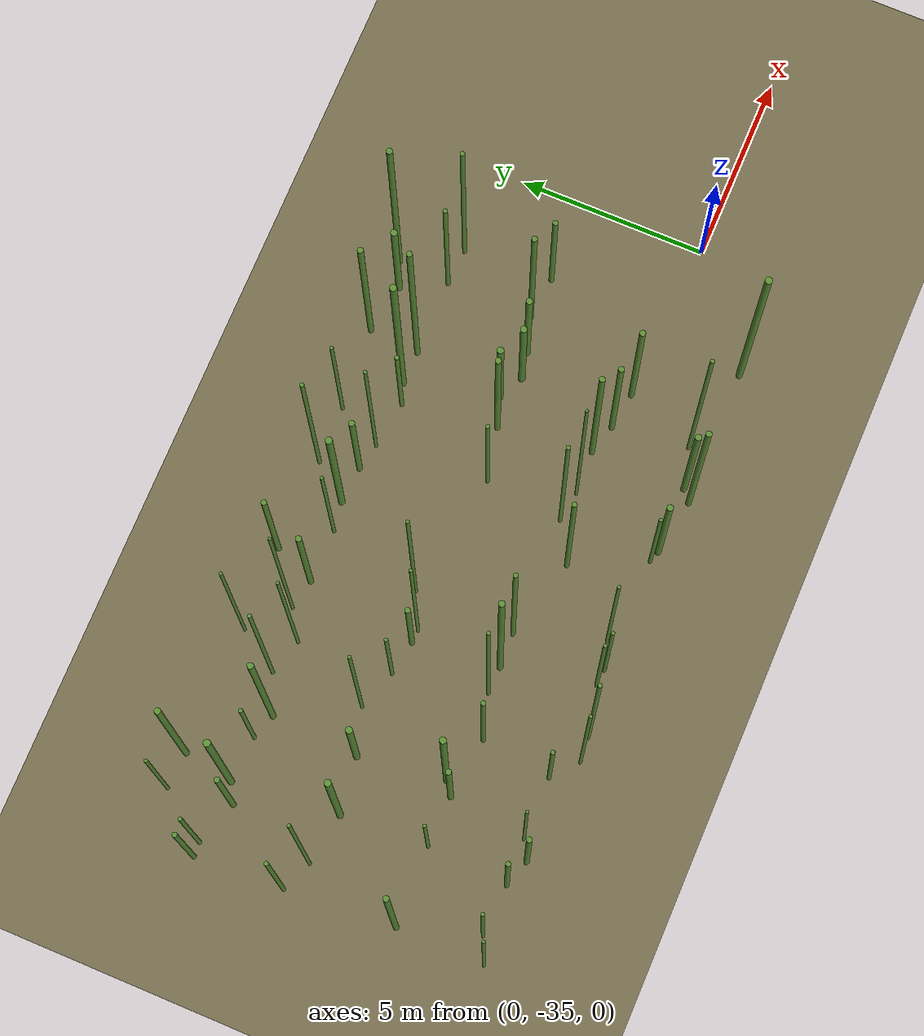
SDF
<sdf version="1.9">
 <world name="bamboo_field">
  <model name="ground_plane">
   <static>true</static>
   <link name="link">
    <collision name="collision">
     <geometry><plane><normal>0 0 1</normal><size>80.0 80.0</size></plane></geometry>
    </collision>
    <visual name="visual">
     <geometry><plane><normal>0 0 1</normal><size>80.0 80.0</size></plane></geometry>
     <material><diffuse>0.45 0.42 0.30 1</diffuse></material>
    </visual>
   </link>
  </model>
  <model name="bamboo_15">
   <static>true</static>
   <pose>-19.13553434772024 -36.862579329947536 3.441443638720389 0 0 0</pose>
   <link name="link">
    <collision name="collision">
     <geometry>
      <cylinder><radius>0.04057405109714098</radius><length>6.882887277440778</length></cylinder>
     </geometry>
    </collision>
    <visual name="visual">
     <geometry>
      <cylinder><radius>0.04057405109714098</radius><length>6.882887277440778</length></cylinder>
     </geometry>
     <material><diffuse>0.35 0.55 0.20 1</diffuse><specular>0.1 0.1 0.1 1</specular></material>
    </visual>
   </link>
  </model>
  <model name="bamboo_16">
   <static>true</static>
   <pose>-18.48839493562738 -36.57078741196894 2.86953050133821 0 0 0</pose>
   <link name="link">
    <collision name="collision">
     <geometry>
      <cylinder><radius>0.045577608679793824</radius><length>5.73906100267642</length></cylinder>
     </geometry>
    </collision>
    <visual name="visual">
     <geometry>
      <cylinder><radius>0.045577608679793824</radius><length>5.73906100267642</length></cylinder>
     </geometry>
     <material><diffuse>0.35 0.55 0.20 1</diffuse><specular>0.1 0.1 0.1 1</specular></material>
    </visual>
   </link>
  </model>
  <model name="bamboo_17">
   <static>true</static>
   <pose>-17.116820866365174 -36.629095562347956 2.3573037610602627 0 0 0</pose>
   <link name="link">
    <collision name="collision">
     <geometry>
      <cylinder><radius>0.06502930565251491</radius><length>4.7146075221205255</length></cylinder>
     </geometry>
    </collision>
    <visual name="visual">
     <geometry>
      <cylinder><radius>0.06502930565251491</radius><length>4.7146075221205255</length></cylinder>
     </geometry>
     <material><diffuse>0.35 0.55 0.20 1</diffuse><specular>0.1 0.1 0.1 1</specular></material>
    </visual>
   </link>
  </model>
  <model name="bamboo_18">
   <static>true</static>
   <pose>-16.40252487727449 -36.860893240149956 2.3056785370992694 0 0 0</pose>
   <link name="link">
    <collision name="collision">
     <geometry>
      <cylinder><radius>0.07044851057190861</radius><length>4.611357074198539</length></cylinder>
     </geometry>
    </collision>
    <visual name="visual">
     <geometry>
      <cylinder><radius>0.07044851057190861</radius><length>4.611357074198539</length></cylinder>
     </geometry>
     <material><diffuse>0.35 0.55 0.20 1</diffuse><specular>0.1 0.1 0.1 1</specular></material>
    </visual>
   </link>
  </model>
  <model name="bamboo_19">
   <static>true</static>
   <pose>-15.91119812620479 -36.58808952984846 2.648312114009346 0 0 0</pose>
   <link name="link">
    <collision name="collision">
     <geometry>
      <cylinder><radius>0.04002859480639718</radius><length>5.296624228018692</length></cylinder>
     </geometry>
    </collision>
    <visual name="visual">
     <geometry>
      <cylinder><radius>0.04002859480639718</radius><length>5.296624228018692</length></cylinder>
     </geometry>
     <material><diffuse>0.35 0.55 0.20 1</diffuse><specular>0.1 0.1 0.1 1</specular></material>
    </visual>
   </link>
  </model>
  <model name="bamboo_20">
   <static>true</static>
   <pose>-14.258736375302771 -36.57559394952509 2.115850332988375 0 0 0</pose>
   <link name="link">
    <collision name="collision">
     <geometry>
      <cylinder><radius>0.05537570627013307</radius><length>4.23170066597675</length></cylinder>
     </geometry>
    </collision>
    <visual name="visual">
     <geometry>
      <cylinder><radius>0.05537570627013307</radius><length>4.23170066597675</length></cylinder>
     </geometry>
     <material><diffuse>0.35 0.55 0.20 1</diffuse><specular>0.1 0.1 0.1 1</specular></material>
    </visual>
   </link>
  </model>
  <model name="bamboo_21">
   <static>true</static>
   <pose>-13.602997613403556 -37.14858453608386 3.521204330514463 0 0 0</pose>
   <link name="link">
    <collision name="collision">
     <geometry>
      <cylinder><radius>0.043460625923419184</radius><length>7.042408661028926</length></cylinder>
     </geometry>
    </collision>
    <visual name="visual">
     <geometry>
      <cylinder><radius>0.043460625923419184</radius><length>7.042408661028926</length></cylinder>
     </geometry>
     <material><diffuse>0.35 0.55 0.20 1</diffuse><specular>0.1 0.1 0.1 1</specular></material>
    </visual>
   </link>
  </model>
  <model name="bamboo_22">
   <static>true</static>
   <pose>-12.952772204538334 -37.090199817424235 3.744866082170515 0 0 0</pose>
   <link name="link">
    <collision name="collision">
     <geometry>
      <cylinder><radius>0.053252831447002956</radius><length>7.48973216434103</length></cylinder>
     </geometry>
    </collision>
    <visual name="visual">
     <geometry>
      <cylinder><radius>0.053252831447002956</radius><length>7.48973216434103</length></cylinder>
     </geometry>
     <material><diffuse>0.35 0.55 0.20 1</diffuse><specular>0.1 0.1 0.1 1</specular></material>
    </visual>
   </link>
  </model>
  <model name="bamboo_23">
   <static>true</static>
   <pose>-11.636645777504546 -36.783543920886075 2.62343258260179 0 0 0</pose>
   <link name="link">
    <collision name="collision">
     <geometry>
      <cylinder><radius>0.05005755316948479</radius><length>5.24686516520358</length></cylinder>
     </geometry>
    </collision>
    <visual name="visual">
     <geometry>
      <cylinder><radius>0.05005755316948479</radius><length>5.24686516520358</length></cylinder>
     </geometry>
     <material><diffuse>0.35 0.55 0.20 1</diffuse><specular>0.1 0.1 0.1 1</specular></material>
    </visual>
   </link>
  </model>
  <model name="bamboo_24">
   <static>true</static>
   <pose>-11.221350400098151 -36.82664245831363 2.4493946740631145 0 0 0</pose>
   <link name="link">
    <collision name="collision">
     <geometry>
      <cylinder><radius>0.04605020979341329</radius><length>4.898789348126229</length></cylinder>
     </geometry>
    </collision>
    <visual name="visual">
     <geometry>
      <cylinder><radius>0.04605020979341329</radius><length>4.898789348126229</length></cylinder>
     </geometry>
     <material><diffuse>0.35 0.55 0.20 1</diffuse><specular>0.1 0.1 0.1 1</specular></material>
    </visual>
   </link>
  </model>
  <model name="bamboo_25">
   <static>true</static>
   <pose>-10.50570515189493 -36.6046645521294 3.262205914540198 0 0 0</pose>
   <link name="link">
    <collision name="collision">
     <geometry>
      <cylinder><radius>0.04354965430045163</radius><length>6.524411829080396</length></cylinder>
     </geometry>
    </collision>
    <visual name="visual">
     <geometry>
      <cylinder><radius>0.04354965430045163</radius><length>6.524411829080396</length></cylinder>
     </geometry>
     <material><diffuse>0.35 0.55 0.20 1</diffuse><specular>0.1 0.1 0.1 1</specular></material>
    </visual>
   </link>
  </model>
  <model name="bamboo_26">
   <static>true</static>
   <pose>-8.172048418307172 -36.83872839590599 2.26462369745005 0 0 0</pose>
   <link name="link">
    <collision name="collision">
     <geometry><cylinder><radius>0.05071184036852193</radius><length>4.5292473949001</length></cylinder></geometry>
    </collision>
    <visual name="visual">
     <geometry><cylinder><radius>0.05071184036852193</radius><length>4.5292473949001</length></cylinder></geometry>
     <material><diffuse>0.35 0.55 0.20 1</diffuse><specular>0.1 0.1 0.1 1</specular></material>
    </visual>
   </link>
  </model>
  <model name="bamboo_27">
   <static>true</static>
   <pose>-7.869988406228748 -36.936722733549225 2.380819828723755 0 0 0</pose>
   <link name="link">
    <collision name="collision">
     <geometry>
      <cylinder><radius>0.08037484988833217</radius><length>4.76163965744751</length></cylinder>
     </geometry>
    </collision>
    <visual name="visual">
     <geometry>
      <cylinder><radius>0.08037484988833217</radius><length>4.76163965744751</length></cylinder>
     </geometry>
     <material><diffuse>0.35 0.55 0.20 1</diffuse><specular>0.1 0.1 0.1 1</specular></material>
    </visual>
   </link>
  </model>
  <model name="bamboo_28">
   <static>true</static>
   <pose>-6.37949287902478 -37.16956605142732 3.3467290945866033 0 0 0</pose>
   <link name="link">
    <collision name="collision">
     <geometry>
      <cylinder><radius>0.07645379247299253</radius><length>6.693458189173207</length></cylinder>
     </geometry>
    </collision>
    <visual name="visual">
     <geometry>
      <cylinder><radius>0.07645379247299253</radius><length>6.693458189173207</length></cylinder>
     </geometry>
     <material><diffuse>0.35 0.55 0.20 1</diffuse><specular>0.1 0.1 0.1 1</specular></material>
    </visual>
   </link>
  </model>
  <model name="bamboo_29">
   <static>true</static>
   <pose>-6.0742137782314805 -36.924429077750496 2.4973126678405713 0 0 0</pose>
   <link name="link">
    <collision name="collision">
     <geometry>
      <cylinder><radius>0.08308362681763955</radius><length>4.9946253356811425</length></cylinder>
     </geometry>
    </collision>
    <visual name="visual">
     <geometry>
      <cylinder><radius>0.08308362681763955</radius><length>4.9946253356811425</length></cylinder>
     </geometry>
     <material><diffuse>0.35 0.55 0.20 1</diffuse><specular>0.1 0.1 0.1 1</specular></material>
    </visual>
   </link>
  </model>
  <model name="bamboo_30">
   <static>true</static>
   <pose>-5.0284158366688665 -36.63551418790041 3.8465311985520256 0 0 0</pose>
   <link name="link">
    <collision name="collision">
     <geometry>
      <cylinder><radius>0.052490322394105025</radius><length>7.693062397104051</length></cylinder>
     </geometry>
    </collision>
    <visual name="visual">
     <geometry>
      <cylinder><radius>0.052490322394105025</radius><length>7.693062397104051</length></cylinder>
     </geometry>
     <material><diffuse>0.35 0.55 0.20 1</diffuse><specular>0.1 0.1 0.1 1</specular></material>
    </visual>
   </link>
  </model>
  <model name="bamboo_31">
   <static>true</static>
   <pose>-2.724677231771242 -37.12204078381095 3.852733966016255 0 0 0</pose>
   <link name="link">
    <collision name="collision">
     <geometry>
      <cylinder><radius>0.08844981286423756</radius><length>7.70546793203251</length></cylinder>
     </geometry>
    </collision>
    <visual name="visual">
     <geometry>
      <cylinder><radius>0.08844981286423756</radius><length>7.70546793203251</length></cylinder>
     </geometry>
     <material><diffuse>0.35 0.55 0.20 1</diffuse><specular>0.1 0.1 0.1 1</specular></material>
    </visual>
   </link>
  </model>
  <model name="bamboo_82">
   <static>true</static>
   <pose>-19.112778545010737 -34.52082828209875 3.5337961967124816 0 0 0</pose>
   <link name="link">
    <collision name="collision">
     <geometry>
      <cylinder><radius>0.07497324856230754</radius><length>7.067592393424963</length></cylinder>
     </geometry>
    </collision>
    <visual name="visual">
     <geometry>
      <cylinder><radius>0.07497324856230754</radius><length>7.067592393424963</length></cylinder>
     </geometry>
     <material><diffuse>0.35 0.55 0.20 1</diffuse><specular>0.1 0.1 0.1 1</specular></material>
    </visual>
   </link>
  </model>
  <model name="bamboo_83">
   <static>true</static>
   <pose>-16.984970143785368 -34.47175842702711 2.051356850994932 0 0 0</pose>
   <link name="link">
    <collision name="collision">
     <geometry>
      <cylinder><radius>0.045404937482880325</radius><length>4.102713701989864</length></cylinder>
     </geometry>
    </collision>
    <visual name="visual">
     <geometry>
      <cylinder><radius>0.045404937482880325</radius><length>4.102713701989864</length></cylinder>
     </geometry>
     <material><diffuse>0.35 0.55 0.20 1</diffuse><specular>0.1 0.1 0.1 1</specular></material>
    </visual>
   </link>
  </model>
  <model name="bamboo_84">
   <static>true</static>
   <pose>-15.636640988426208 -34.50683185090167 2.15199295568612 0 0 0</pose>
   <link name="link">
    <collision name="collision">
     <geometry>
      <cylinder><radius>0.07575073525247342</radius><length>4.30398591137224</length></cylinder>
     </geometry>
    </collision>
    <visual name="visual">
     <geometry>
      <cylinder><radius>0.07575073525247342</radius><length>4.30398591137224</length></cylinder>
     </geometry>
     <material><diffuse>0.35 0.55 0.20 1</diffuse><specular>0.1 0.1 0.1 1</specular></material>
    </visual>
   </link>
  </model>
  <model name="bamboo_85">
   <static>true</static>
   <pose>-15.294572011853782 -34.25721048176213 3.2008232296336883 0 0 0</pose>
   <link name="link">
    <collision name="collision">
     <geometry>
      <cylinder><radius>0.08251466195443981</radius><length>6.4016464592673765</length></cylinder>
     </geometry>
    </collision>
    <visual name="visual">
     <geometry>
      <cylinder><radius>0.08251466195443981</radius><length>6.4016464592673765</length></cylinder>
     </geometry>
     <material><diffuse>0.35 0.55 0.20 1</diffuse><specular>0.1 0.1 0.1 1</specular></material>
    </visual>
   </link>
  </model>
  <model name="bamboo_86">
   <static>true</static>
   <pose>-14.01208386608254 -34.7070397054195 2.7411417524361124 0 0 0</pose>
   <link name="link">
    <collision name="collision">
     <geometry>
      <cylinder><radius>0.06141890066173722</radius><length>5.482283504872225</length></cylinder>
     </geometry>
    </collision>
    <visual name="visual">
     <geometry>
      <cylinder><radius>0.06141890066173722</radius><length>5.482283504872225</length></cylinder>
     </geometry>
     <material><diffuse>0.35 0.55 0.20 1</diffuse><specular>0.1 0.1 0.1 1</specular></material>
    </visual>
   </link>
  </model>
  <model name="bamboo_87">
   <static>true</static>
   <pose>-12.881516593785651 -34.365806410120676 3.9215751344291574 0 0 0</pose>
   <link name="link">
    <collision name="collision">
     <geometry>
      <cylinder><radius>0.04527694353219993</radius><length>7.843150268858315</length></cylinder>
     </geometry>
    </collision>
    <visual name="visual">
     <geometry>
      <cylinder><radius>0.04527694353219993</radius><length>7.843150268858315</length></cylinder>
     </geometry>
     <material><diffuse>0.35 0.55 0.20 1</diffuse><specular>0.1 0.1 0.1 1</specular></material>
    </visual>
   </link>
  </model>
  <model name="bamboo_88">
   <static>true</static>
   <pose>-12.154445033103054 -34.38016207465767 3.9309474624761553 0 0 0</pose>
   <link name="link">
    <collision name="collision">
     <geometry>
      <cylinder><radius>0.07668976520066959</radius><length>7.861894924952311</length></cylinder>
     </geometry>
    </collision>
    <visual name="visual">
     <geometry>
      <cylinder><radius>0.07668976520066959</radius><length>7.861894924952311</length></cylinder>
     </geometry>
     <material><diffuse>0.35 0.55 0.20 1</diffuse><specular>0.1 0.1 0.1 1</specular></material>
    </visual>
   </link>
  </model>
  <model name="bamboo_89">
   <static>true</static>
   <pose>-11.240356671360473 -34.34970231580887 3.4620524286102445 0 0 0</pose>
   <link name="link">
    <collision name="collision">
     <geometry>
      <cylinder><radius>0.06177872465019471</radius><length>6.924104857220489</length></cylinder>
     </geometry>
    </collision>
    <visual name="visual">
     <geometry>
      <cylinder><radius>0.06177872465019471</radius><length>6.924104857220489</length></cylinder>
     </geometry>
     <material><diffuse>0.35 0.55 0.20 1</diffuse><specular>0.1 0.1 0.1 1</specular></material>
    </visual>
   </link>
  </model>
  <model name="bamboo_90">
   <static>true</static>
   <pose>-9.077996153947796 -34.92581152938334 3.220663408461041 0 0 0</pose>
   <link name="link">
    <collision name="collision">
     <geometry>
      <cylinder><radius>0.06323542333016158</radius><length>6.441326816922082</length></cylinder>
     </geometry>
    </collision>
    <visual name="visual">
     <geometry>
      <cylinder><radius>0.06323542333016158</radius><length>6.441326816922082</length></cylinder>
     </geometry>
     <material><diffuse>0.35 0.55 0.20 1</diffuse><specular>0.1 0.1 0.1 1</specular></material>
    </visual>
   </link>
  </model>
  <model name="bamboo_91">
   <static>true</static>
   <pose>-8.0646703420976 -34.32967754199164 3.595664713656193 0 0 0</pose>
   <link name="link">
    <collision name="collision">
     <geometry>
      <cylinder><radius>0.05060599250898695</radius><length>7.191329427312386</length></cylinder>
     </geometry>
    </collision>
    <visual name="visual">
     <geometry>
      <cylinder><radius>0.05060599250898695</radius><length>7.191329427312386</length></cylinder>
     </geometry>
     <material><diffuse>0.35 0.55 0.20 1</diffuse><specular>0.1 0.1 0.1 1</specular></material>
    </visual>
   </link>
  </model>
  <model name="bamboo_92">
   <static>true</static>
   <pose>-7.262504958809101 -34.44184926294946 3.8961251555540626 0 0 0</pose>
   <link name="link">
    <collision name="collision">
     <geometry>
      <cylinder><radius>0.040507555721933854</radius><length>7.792250311108125</length></cylinder>
     </geometry>
    </collision>
    <visual name="visual">
     <geometry>
      <cylinder><radius>0.040507555721933854</radius><length>7.792250311108125</length></cylinder>
     </geometry>
     <material><diffuse>0.35 0.55 0.20 1</diffuse><specular>0.1 0.1 0.1 1</specular></material>
    </visual>
   </link>
  </model>
  <model name="bamboo_93">
   <static>true</static>
   <pose>-6.083427958885191 -34.39084852012978 3.2918057994819048 0 0 0</pose>
   <link name="link">
    <collision name="collision">
     <geometry>
      <cylinder><radius>0.07453046697232615</radius><length>6.5836115989638095</length></cylinder>
     </geometry>
    </collision>
    <visual name="visual">
     <geometry>
      <cylinder><radius>0.07453046697232615</radius><length>6.5836115989638095</length></cylinder>
     </geometry>
     <material><diffuse>0.35 0.55 0.20 1</diffuse><specular>0.1 0.1 0.1 1</specular></material>
    </visual>
   </link>
  </model>
  <model name="bamboo_94">
   <static>true</static>
   <pose>-5.282692643485676 -34.61461918569073 2.612412060260177 0 0 0</pose>
   <link name="link">
    <collision name="collision">
     <geometry>
      <cylinder><radius>0.07458935776476008</radius><length>5.224824120520354</length></cylinder>
     </geometry>
    </collision>
    <visual name="visual">
     <geometry>
      <cylinder><radius>0.07458935776476008</radius><length>5.224824120520354</length></cylinder>
     </geometry>
     <material><diffuse>0.35 0.55 0.20 1</diffuse><specular>0.1 0.1 0.1 1</specular></material>
    </visual>
   </link>
  </model>
  <model name="bamboo_95">
   <static>true</static>
   <pose>-4.285414321229988 -34.75626002893906 2.6615825943918603 0 0 0</pose>
   <link name="link">
    <collision name="collision">
     <geometry>
      <cylinder><radius>0.07729677183568048</radius><length>5.323165188783721</length></cylinder>
     </geometry>
    </collision>
    <visual name="visual">
     <geometry>
      <cylinder><radius>0.07729677183568048</radius><length>5.323165188783721</length></cylinder>
     </geometry>
     <material><diffuse>0.35 0.55 0.20 1</diffuse><specular>0.1 0.1 0.1 1</specular></material>
    </visual>
   </link>
  </model>
  <model name="bamboo_151">
   <static>true</static>
   <pose>-19.32313781338974 -31.605977952745672 2.816591711590825 0 0 0</pose>
   <link name="link">
    <collision name="collision">
     <geometry>
      <cylinder><radius>0.05510950872646251</radius><length>5.63318342318165</length></cylinder>
     </geometry>
    </collision>
    <visual name="visual">
     <geometry>
      <cylinder><radius>0.05510950872646251</radius><length>5.63318342318165</length></cylinder>
     </geometry>
     <material><diffuse>0.35 0.55 0.20 1</diffuse><specular>0.1 0.1 0.1 1</specular></material>
    </visual>
   </link>
  </model>
  <model name="bamboo_152">
   <static>true</static>
   <pose>-18.504271054307956 -31.95081039594081 3.7745186170570046 0 0 0</pose>
   <link name="link">
    <collision name="collision">
     <geometry>
      <cylinder><radius>0.04485959993109108</radius><length>7.549037234114009</length></cylinder>
     </geometry>
    </collision>
    <visual name="visual">
     <geometry>
      <cylinder><radius>0.04485959993109108</radius><length>7.549037234114009</length></cylinder>
     </geometry>
     <material><diffuse>0.35 0.55 0.20 1</diffuse><specular>0.1 0.1 0.1 1</specular></material>
    </visual>
   </link>
  </model>
  <model name="bamboo_153">
   <static>true</static>
   <pose>-17.111453090526602 -32.16019499407615 2.838253506829446 0 0 0</pose>
   <link name="link">
    <collision name="collision">
     <geometry>
      <cylinder><radius>0.0872987042889716</radius><length>5.676507013658892</length></cylinder>
     </geometry>
    </collision>
    <visual name="visual">
     <geometry>
      <cylinder><radius>0.0872987042889716</radius><length>5.676507013658892</length></cylinder>
     </geometry>
     <material><diffuse>0.35 0.55 0.20 1</diffuse><specular>0.1 0.1 0.1 1</specular></material>
    </visual>
   </link>
  </model>
  <model name="bamboo_154">
   <static>true</static>
   <pose>-15.60997780365765 -31.95799286552054 2.065432573710094 0 0 0</pose>
   <link name="link">
    <collision name="collision">
     <geometry>
      <cylinder><radius>0.08757607626905298</radius><length>4.130865147420188</length></cylinder>
     </geometry>
    </collision>
    <visual name="visual">
     <geometry>
      <cylinder><radius>0.08757607626905298</radius><length>4.130865147420188</length></cylinder>
     </geometry>
     <material><diffuse>0.35 0.55 0.20 1</diffuse><specular>0.1 0.1 0.1 1</specular></material>
    </visual>
   </link>
  </model>
  <model name="bamboo_155">
   <static>true</static>
   <pose>-14.408000603793683 -31.5838712551466 3.371360530962571 0 0 0</pose>
   <link name="link">
    <collision name="collision">
     <geometry>
      <cylinder><radius>0.044967731230306514</radius><length>6.742721061925142</length></cylinder>
     </geometry>
    </collision>
    <visual name="visual">
     <geometry>
      <cylinder><radius>0.044967731230306514</radius><length>6.742721061925142</length></cylinder>
     </geometry>
     <material><diffuse>0.35 0.55 0.20 1</diffuse><specular>0.1 0.1 0.1 1</specular></material>
    </visual>
   </link>
  </model>
  <model name="bamboo_156">
   <static>true</static>
   <pose>-13.35203393842168 -31.950058867763673 2.2443194381745277 0 0 0</pose>
   <link name="link">
    <collision name="collision">
     <geometry>
      <cylinder><radius>0.04949042810805398</radius><length>4.4886388763490555</length></cylinder>
     </geometry>
    </collision>
    <visual name="visual">
     <geometry>
      <cylinder><radius>0.04949042810805398</radius><length>4.4886388763490555</length></cylinder>
     </geometry>
     <material><diffuse>0.35 0.55 0.20 1</diffuse><specular>0.1 0.1 0.1 1</specular></material>
    </visual>
   </link>
  </model>
  <model name="bamboo_157">
   <static>true</static>
   <pose>-12.429793461803236 -32.09786279774821 2.0427149094727413 0 0 0</pose>
   <link name="link">
    <collision name="collision">
     <geometry>
      <cylinder><radius>0.06985729797597726</radius><length>4.0854298189454825</length></cylinder>
     </geometry>
    </collision>
    <visual name="visual">
     <geometry>
      <cylinder><radius>0.06985729797597726</radius><length>4.0854298189454825</length></cylinder>
     </geometry>
     <material><diffuse>0.35 0.55 0.20 1</diffuse><specular>0.1 0.1 0.1 1</specular></material>
    </visual>
   </link>
  </model>
  <model name="bamboo_158">
   <static>true</static>
   <pose>-12.085169961755588 -32.117195079419965 3.530314751777169 0 0 0</pose>
   <link name="link">
    <collision name="collision">
     <geometry>
      <cylinder><radius>0.043430507641217794</radius><length>7.060629503554338</length></cylinder>
     </geometry>
    </collision>
    <visual name="visual">
     <geometry>
      <cylinder><radius>0.043430507641217794</radius><length>7.060629503554338</length></cylinder>
     </geometry>
     <material><diffuse>0.35 0.55 0.20 1</diffuse><specular>0.1 0.1 0.1 1</specular></material>
    </visual>
   </link>
  </model>
  <model name="bamboo_159">
   <static>true</static>
   <pose>-11.18031706425442 -31.66747673729691 3.8010620712635164 0 0 0</pose>
   <link name="link">
    <collision name="collision">
     <geometry>
      <cylinder><radius>0.047377708997072186</radius><length>7.602124142527033</length></cylinder>
     </geometry>
    </collision>
    <visual name="visual">
     <geometry>
      <cylinder><radius>0.047377708997072186</radius><length>7.602124142527033</length></cylinder>
     </geometry>
     <material><diffuse>0.35 0.55 0.20 1</diffuse><specular>0.1 0.1 0.1 1</specular></material>
    </visual>
   </link>
  </model>
  <model name="bamboo_160">
   <static>true</static>
   <pose>-7.831825550555443 -32.23168171326021 2.647542923924045 0 0 0</pose>
   <link name="link">
    <collision name="collision">
     <geometry>
      <cylinder><radius>0.051896580304523154</radius><length>5.29508584784809</length></cylinder>
     </geometry>
    </collision>
    <visual name="visual">
     <geometry>
      <cylinder><radius>0.051896580304523154</radius><length>5.29508584784809</length></cylinder>
     </geometry>
     <material><diffuse>0.35 0.55 0.20 1</diffuse><specular>0.1 0.1 0.1 1</specular></material>
    </visual>
   </link>
  </model>
  <model name="bamboo_161">
   <static>true</static>
   <pose>-6.412498741238165 -31.9090944554366 2.9524919308465005 0 0 0</pose>
   <link name="link">
    <collision name="collision">
     <geometry>
      <cylinder><radius>0.07728326375169978</radius><length>5.904983861693001</length></cylinder>
     </geometry>
    </collision>
    <visual name="visual">
     <geometry>
      <cylinder><radius>0.07728326375169978</radius><length>5.904983861693001</length></cylinder>
     </geometry>
     <material><diffuse>0.35 0.55 0.20 1</diffuse><specular>0.1 0.1 0.1 1</specular></material>
    </visual>
   </link>
  </model>
  <model name="bamboo_162">
   <static>true</static>
   <pose>-5.665230167570304 -31.661474390331147 2.0867300737983436 0 0 0</pose>
   <link name="link">
    <collision name="collision">
     <geometry>
      <cylinder><radius>0.08727078214850531</radius><length>4.173460147596687</length></cylinder>
     </geometry>
    </collision>
    <visual name="visual">
     <geometry>
      <cylinder><radius>0.08727078214850531</radius><length>4.173460147596687</length></cylinder>
     </geometry>
     <material><diffuse>0.35 0.55 0.20 1</diffuse><specular>0.1 0.1 0.1 1</specular></material>
    </visual>
   </link>
  </model>
  <model name="bamboo_163">
   <static>true</static>
   <pose>-4.969621241172481 -31.98722894760424 2.1216508149890116 0 0 0</pose>
   <link name="link">
    <collision name="collision">
     <geometry>
      <cylinder><radius>0.08820130915610143</radius><length>4.243301629978023</length></cylinder>
     </geometry>
    </collision>
    <visual name="visual">
     <geometry>
      <cylinder><radius>0.08820130915610143</radius><length>4.243301629978023</length></cylinder>
     </geometry>
     <material><diffuse>0.35 0.55 0.20 1</diffuse><specular>0.1 0.1 0.1 1</specular></material>
    </visual>
   </link>
  </model>
  <model name="bamboo_164">
   <static>true</static>
   <pose>-4.273916246258888 -31.842552829219624 2.146981431532901 0 0 0</pose>
   <link name="link">
    <collision name="collision">
     <geometry>
      <cylinder><radius>0.08548504145576147</radius><length>4.293962863065802</length></cylinder>
     </geometry>
    </collision>
    <visual name="visual">
     <geometry>
      <cylinder><radius>0.08548504145576147</radius><length>4.293962863065802</length></cylinder>
     </geometry>
     <material><diffuse>0.35 0.55 0.20 1</diffuse><specular>0.1 0.1 0.1 1</specular></material>
    </visual>
   </link>
  </model>
  <model name="bamboo_165">
   <static>true</static>
   <pose>-3.376566876795329 -31.572121596660388 3.096712868096721 0 0 0</pose>
   <link name="link">
    <collision name="collision">
     <geometry>
      <cylinder><radius>0.07165383621505078</radius><length>6.193425736193442</length></cylinder>
     </geometry>
    </collision>
    <visual name="visual">
     <geometry>
      <cylinder><radius>0.07165383621505078</radius><length>6.193425736193442</length></cylinder>
     </geometry>
     <material><diffuse>0.35 0.55 0.20 1</diffuse><specular>0.1 0.1 0.1 1</specular></material>
    </visual>
   </link>
  </model>
  <model name="bamboo_166">
   <static>true</static>
   <pose>-2.2007283591636204 -31.671406109656132 2.1983569233580837 0 0 0</pose>
   <link name="link">
    <collision name="collision">
     <geometry>
      <cylinder><radius>0.07027133957676564</radius><length>4.3967138467161675</length></cylinder>
     </geometry>
    </collision>
    <visual name="visual">
     <geometry>
      <cylinder><radius>0.07027133957676564</radius><length>4.3967138467161675</length></cylinder>
     </geometry>
     <material><diffuse>0.35 0.55 0.20 1</diffuse><specular>0.1 0.1 0.1 1</specular></material>
    </visual>
   </link>
  </model>
  <model name="bamboo_217">
   <static>true</static>
   <pose>-19.44555589431328 -29.24128058533189 2.22171579058003 0 0 0</pose>
   <link name="link">
    <collision name="collision">
     <geometry>
      <cylinder><radius>0.06285568083182243</radius><length>4.44343158116006</length></cylinder>
     </geometry>
    </collision>
    <visual name="visual">
     <geometry>
      <cylinder><radius>0.06285568083182243</radius><length>4.44343158116006</length></cylinder>
     </geometry>
     <material><diffuse>0.35 0.55 0.20 1</diffuse><specular>0.1 0.1 0.1 1</specular></material>
    </visual>
   </link>
  </model>
  <model name="bamboo_218">
   <static>true</static>
   <pose>-19.07211734822199 -29.228631207361985 2.28715368049252 0 0 0</pose>
   <link name="link">
    <collision name="collision">
     <geometry>
      <cylinder><radius>0.05209690672104966</radius><length>4.57430736098504</length></cylinder>
     </geometry>
    </collision>
    <visual name="visual">
     <geometry>
      <cylinder><radius>0.05209690672104966</radius><length>4.57430736098504</length></cylinder>
     </geometry>
     <material><diffuse>0.35 0.55 0.20 1</diffuse><specular>0.1 0.1 0.1 1</specular></material>
    </visual>
   </link>
  </model>
  <model name="bamboo_219">
   <static>true</static>
   <pose>-17.89410073420515 -29.61162238926896 2.1712279099745233 0 0 0</pose>
   <link name="link">
    <collision name="collision">
     <geometry>
      <cylinder><radius>0.07321856508710045</radius><length>4.342455819949047</length></cylinder>
     </geometry>
    </collision>
    <visual name="visual">
     <geometry>
      <cylinder><radius>0.07321856508710045</radius><length>4.342455819949047</length></cylinder>
     </geometry>
     <material><diffuse>0.35 0.55 0.20 1</diffuse><specular>0.1 0.1 0.1 1</specular></material>
    </visual>
   </link>
  </model>
  <model name="bamboo_220">
   <static>true</static>
   <pose>-17.39261748695079 -29.329903360594212 3.108303904836391 0 0 0</pose>
   <link name="link">
    <collision name="collision">
     <geometry>
      <cylinder><radius>0.08941657427982337</radius><length>6.216607809672782</length></cylinder>
     </geometry>
    </collision>
    <visual name="visual">
     <geometry>
      <cylinder><radius>0.08941657427982337</radius><length>6.216607809672782</length></cylinder>
     </geometry>
     <material><diffuse>0.35 0.55 0.20 1</diffuse><specular>0.1 0.1 0.1 1</specular></material>
    </visual>
   </link>
  </model>
  <model name="bamboo_221">
   <static>true</static>
   <pose>-16.159702771759722 -29.417636170090777 2.0324844622178952 0 0 0</pose>
   <link name="link">
    <collision name="collision">
     <geometry>
      <cylinder><radius>0.05268251305346064</radius><length>4.0649689244357905</length></cylinder>
     </geometry>
    </collision>
    <visual name="visual">
     <geometry>
      <cylinder><radius>0.05268251305346064</radius><length>4.0649689244357905</length></cylinder>
     </geometry>
     <material><diffuse>0.35 0.55 0.20 1</diffuse><specular>0.1 0.1 0.1 1</specular></material>
    </visual>
   </link>
  </model>
  <model name="bamboo_222">
   <static>true</static>
   <pose>-15.485727348714736 -29.627962933498505 3.4703739696246227 0 0 0</pose>
   <link name="link">
    <collision name="collision">
     <geometry>
      <cylinder><radius>0.07857506870549295</radius><length>6.9407479392492455</length></cylinder>
     </geometry>
    </collision>
    <visual name="visual">
     <geometry>
      <cylinder><radius>0.07857506870549295</radius><length>6.9407479392492455</length></cylinder>
     </geometry>
     <material><diffuse>0.35 0.55 0.20 1</diffuse><specular>0.1 0.1 0.1 1</specular></material>
    </visual>
   </link>
  </model>
  <model name="bamboo_223">
   <static>true</static>
   <pose>-14.474848846669122 -29.17222543890791 3.558285186956563 0 0 0</pose>
   <link name="link">
    <collision name="collision">
     <geometry>
      <cylinder><radius>0.04875445635258542</radius><length>7.116570373913126</length></cylinder>
     </geometry>
    </collision>
    <visual name="visual">
     <geometry>
      <cylinder><radius>0.04875445635258542</radius><length>7.116570373913126</length></cylinder>
     </geometry>
     <material><diffuse>0.35 0.55 0.20 1</diffuse><specular>0.1 0.1 0.1 1</specular></material>
    </visual>
   </link>
  </model>
  <model name="bamboo_224">
   <static>true</static>
   <pose>-13.527014833175567 -29.45358811548263 3.5523807994068433 0 0 0</pose>
   <link name="link">
    <collision name="collision">
     <geometry>
      <cylinder><radius>0.04315502685161123</radius><length>7.1047615988136865</length></cylinder>
     </geometry>
    </collision>
    <visual name="visual">
     <geometry>
      <cylinder><radius>0.04315502685161123</radius><length>7.1047615988136865</length></cylinder>
     </geometry>
     <material><diffuse>0.35 0.55 0.20 1</diffuse><specular>0.1 0.1 0.1 1</specular></material>
    </visual>
   </link>
  </model>
  <model name="bamboo_225">
   <static>true</static>
   <pose>-12.769099514646916 -28.966612023697866 3.8667419599007946 0 0 0</pose>
   <link name="link">
    <collision name="collision">
     <geometry>
      <cylinder><radius>0.0420952970965191</radius><length>7.733483919801589</length></cylinder>
     </geometry>
    </collision>
    <visual name="visual">
     <geometry>
      <cylinder><radius>0.0420952970965191</radius><length>7.733483919801589</length></cylinder>
     </geometry>
     <material><diffuse>0.35 0.55 0.20 1</diffuse><specular>0.1 0.1 0.1 1</specular></material>
    </visual>
   </link>
  </model>
  <model name="bamboo_226">
   <static>true</static>
   <pose>-11.962773824838637 -29.112408818420256 2.3822068614678216 0 0 0</pose>
   <link name="link">
    <collision name="collision">
     <geometry>
      <cylinder><radius>0.07766454594094324</radius><length>4.764413722935643</length></cylinder>
     </geometry>
    </collision>
    <visual name="visual">
     <geometry>
      <cylinder><radius>0.07766454594094324</radius><length>4.764413722935643</length></cylinder>
     </geometry>
     <material><diffuse>0.35 0.55 0.20 1</diffuse><specular>0.1 0.1 0.1 1</specular></material>
    </visual>
   </link>
  </model>
  <model name="bamboo_227">
   <static>true</static>
   <pose>-10.543695875323571 -29.138682521441417 2.736038348629346 0 0 0</pose>
   <link name="link">
    <collision name="collision">
     <geometry>
      <cylinder><radius>0.04622375041221917</radius><length>5.472076697258692</length></cylinder>
     </geometry>
    </collision>
    <visual name="visual">
     <geometry>
      <cylinder><radius>0.04622375041221917</radius><length>5.472076697258692</length></cylinder>
     </geometry>
     <material><diffuse>0.35 0.55 0.20 1</diffuse><specular>0.1 0.1 0.1 1</specular></material>
    </visual>
   </link>
  </model>
  <model name="bamboo_228">
   <static>true</static>
   <pose>-9.760215064504608 -29.011980588666276 2.9924064530740453 0 0 0</pose>
   <link name="link">
    <collision name="collision">
     <geometry>
      <cylinder><radius>0.08868617921576545</radius><length>5.984812906148091</length></cylinder>
     </geometry>
    </collision>
    <visual name="visual">
     <geometry>
      <cylinder><radius>0.08868617921576545</radius><length>5.984812906148091</length></cylinder>
     </geometry>
     <material><diffuse>0.35 0.55 0.20 1</diffuse><specular>0.1 0.1 0.1 1</specular></material>
    </visual>
   </link>
  </model>
  <model name="bamboo_229">
   <static>true</static>
   <pose>-8.77905378865501 -29.08335901962723 2.1578540121109357 0 0 0</pose>
   <link name="link">
    <collision name="collision">
     <geometry>
      <cylinder><radius>0.07635406621713178</radius><length>4.3157080242218715</length></cylinder>
     </geometry>
    </collision>
    <visual name="visual">
     <geometry>
      <cylinder><radius>0.07635406621713178</radius><length>4.3157080242218715</length></cylinder>
     </geometry>
     <material><diffuse>0.35 0.55 0.20 1</diffuse><specular>0.1 0.1 0.1 1</specular></material>
    </visual>
   </link>
  </model>
  <model name="bamboo_230">
   <static>true</static>
   <pose>-8.068034239634787 -29.237162775893733 3.321838442916273 0 0 0</pose>
   <link name="link">
    <collision name="collision">
     <geometry>
      <cylinder><radius>0.04400344555374976</radius><length>6.643676885832546</length></cylinder>
     </geometry>
    </collision>
    <visual name="visual">
     <geometry>
      <cylinder><radius>0.04400344555374976</radius><length>6.643676885832546</length></cylinder>
     </geometry>
     <material><diffuse>0.35 0.55 0.20 1</diffuse><specular>0.1 0.1 0.1 1</specular></material>
    </visual>
   </link>
  </model>
  <model name="bamboo_231">
   <static>true</static>
   <pose>-6.803108887205622 -29.412206398089214 2.084710325700259 0 0 0</pose>
   <link name="link">
    <collision name="collision">
     <geometry>
      <cylinder><radius>0.05757734918859961</radius><length>4.169420651400518</length></cylinder>
     </geometry>
    </collision>
    <visual name="visual">
     <geometry>
      <cylinder><radius>0.05757734918859961</radius><length>4.169420651400518</length></cylinder>
     </geometry>
     <material><diffuse>0.35 0.55 0.20 1</diffuse><specular>0.1 0.1 0.1 1</specular></material>
    </visual>
   </link>
  </model>
  <model name="bamboo_232">
   <static>true</static>
   <pose>-6.260345855144165 -29.212739138786844 3.8958087572061726 0 0 0</pose>
   <link name="link">
    <collision name="collision">
     <geometry>
      <cylinder><radius>0.08900136395971395</radius><length>7.791617514412345</length></cylinder>
     </geometry>
    </collision>
    <visual name="visual">
     <geometry>
      <cylinder><radius>0.08900136395971395</radius><length>7.791617514412345</length></cylinder>
     </geometry>
     <material><diffuse>0.35 0.55 0.20 1</diffuse><specular>0.1 0.1 0.1 1</specular></material>
    </visual>
   </link>
  </model>
  <model name="bamboo_233">
   <static>true</static>
   <pose>-5.367604590521699 -29.233696882980553 3.905578792559216 0 0 0</pose>
   <link name="link">
    <collision name="collision">
     <geometry>
      <cylinder><radius>0.07397053039073449</radius><length>7.811157585118432</length></cylinder>
     </geometry>
    </collision>
    <visual name="visual">
     <geometry>
      <cylinder><radius>0.07397053039073449</radius><length>7.811157585118432</length></cylinder>
     </geometry>
     <material><diffuse>0.35 0.55 0.20 1</diffuse><specular>0.1 0.1 0.1 1</specular></material>
    </visual>
   </link>
  </model>
  <model name="bamboo_234">
   <static>true</static>
   <pose>-3.3310608360463707 -29.2354315351068 2.7657088033775556 0 0 0</pose>
   <link name="link">
    <collision name="collision">
     <geometry>
      <cylinder><radius>0.05831642365535743</radius><length>5.531417606755111</length></cylinder>
     </geometry>
    </collision>
    <visual name="visual">
     <geometry>
      <cylinder><radius>0.05831642365535743</radius><length>5.531417606755111</length></cylinder>
     </geometry>
     <material><diffuse>0.35 0.55 0.20 1</diffuse><specular>0.1 0.1 0.1 1</specular></material>
    </visual>
   </link>
  </model>
  <model name="bamboo_235">
   <static>true</static>
   <pose>-2.3547620176541697 -29.28837599822975 3.526168943597159 0 0 0</pose>
   <link name="link">
    <collision name="collision">
     <geometry>
      <cylinder><radius>0.05860066892353419</radius><length>7.052337887194318</length></cylinder>
     </geometry>
    </collision>
    <visual name="visual">
     <geometry>
      <cylinder><radius>0.05860066892353419</radius><length>7.052337887194318</length></cylinder>
     </geometry>
     <material><diffuse>0.35 0.55 0.20 1</diffuse><specular>0.1 0.1 0.1 1</specular></material>
    </visual>
   </link>
  </model>
  <model name="bamboo_286">
   <static>true</static>
   <pose>-18.149881981753374 -27.948227051991587 2.324988525079477 0 0 0</pose>
   <link name="link">
    <collision name="collision">
     <geometry>
      <cylinder><radius>0.04563233805100772</radius><length>4.649977050158954</length></cylinder>
     </geometry>
    </collision>
    <visual name="visual">
     <geometry>
      <cylinder><radius>0.04563233805100772</radius><length>4.649977050158954</length></cylinder>
     </geometry>
     <material><diffuse>0.35 0.55 0.20 1</diffuse><specular>0.1 0.1 0.1 1</specular></material>
    </visual>
   </link>
  </model>
  <model name="bamboo_287">
   <static>true</static>
   <pose>-17.166544558644507 -28.005466028465325 3.1355624448418786 0 0 0</pose>
   <link name="link">
    <collision name="collision">
     <geometry>
      <cylinder><radius>0.07953838322126278</radius><length>6.271124889683757</length></cylinder>
     </geometry>
    </collision>
    <visual name="visual">
     <geometry>
      <cylinder><radius>0.07953838322126278</radius><length>6.271124889683757</length></cylinder>
     </geometry>
     <material><diffuse>0.35 0.55 0.20 1</diffuse><specular>0.1 0.1 0.1 1</specular></material>
    </visual>
   </link>
  </model>
  <model name="bamboo_290">
   <static>true</static>
   <pose>-13.74511438448988 -28.084825435891876 3.3073667341403974 0 0 0</pose>
   <link name="link">
    <collision name="collision">
     <geometry>
      <cylinder><radius>0.0405717867097084</radius><length>6.614733468280795</length></cylinder>
     </geometry>
    </collision>
    <visual name="visual">
     <geometry>
      <cylinder><radius>0.0405717867097084</radius><length>6.614733468280795</length></cylinder>
     </geometry>
     <material><diffuse>0.35 0.55 0.20 1</diffuse><specular>0.1 0.1 0.1 1</specular></material>
    </visual>
   </link>
  </model>
  <model name="bamboo_292">
   <static>true</static>
   <pose>-11.498420977432328 -28.021082572869826 2.438257201870688 0 0 0</pose>
   <link name="link">
    <collision name="collision">
     <geometry>
      <cylinder><radius>0.07073127240719244</radius><length>4.876514403741376</length></cylinder>
     </geometry>
    </collision>
    <visual name="visual">
     <geometry>
      <cylinder><radius>0.07073127240719244</radius><length>4.876514403741376</length></cylinder>
     </geometry>
     <material><diffuse>0.35 0.55 0.20 1</diffuse><specular>0.1 0.1 0.1 1</specular></material>
    </visual>
   </link>
  </model>
  <model name="bamboo_294">
   <static>true</static>
   <pose>-9.015992873432468 -28.071003253620958 3.509479099449731 0 0 0</pose>
   <link name="link">
    <collision name="collision">
     <geometry>
      <cylinder><radius>0.05237327146542889</radius><length>7.018958198899462</length></cylinder>
     </geometry>
    </collision>
    <visual name="visual">
     <geometry>
      <cylinder><radius>0.05237327146542889</radius><length>7.018958198899462</length></cylinder>
     </geometry>
     <material><diffuse>0.35 0.55 0.20 1</diffuse><specular>0.1 0.1 0.1 1</specular></material>
    </visual>
   </link>
  </model>
  <model name="bamboo_296">
   <static>true</static>
   <pose>-7.482054322108899 -28.046944452622984 2.6562352754844127 0 0 0</pose>
   <link name="link">
    <collision name="collision">
     <geometry>
      <cylinder><radius>0.047492619069120716</radius><length>5.3124705509688255</length></cylinder>
     </geometry>
    </collision>
    <visual name="visual">
     <geometry>
      <cylinder><radius>0.047492619069120716</radius><length>5.3124705509688255</length></cylinder>
     </geometry>
     <material><diffuse>0.35 0.55 0.20 1</diffuse><specular>0.1 0.1 0.1 1</specular></material>
    </visual>
   </link>
  </model>
  <model name="bamboo_299">
   <static>true</static>
   <pose>-5.268751323551066 -27.887142261558758 3.156622530118071 0 0 0</pose>
   <link name="link">
    <collision name="collision">
     <geometry>
      <cylinder><radius>0.07729022414159079</radius><length>6.313245060236142</length></cylinder>
     </geometry>
    </collision>
    <visual name="visual">
     <geometry>
      <cylinder><radius>0.07729022414159079</radius><length>6.313245060236142</length></cylinder>
     </geometry>
     <material><diffuse>0.35 0.55 0.20 1</diffuse><specular>0.1 0.1 0.1 1</specular></material>
    </visual>
   </link>
  </model>
  <model name="bamboo_300">
   <static>true</static>
   <pose>-3.9213073268062617 -28.106098058436096 2.1380382923206276 0 0 0</pose>
   <link name="link">
    <collision name="collision">
     <geometry>
      <cylinder><radius>0.08672913994424732</radius><length>4.276076584641255</length></cylinder>
     </geometry>
    </collision>
    <visual name="visual">
     <geometry>
      <cylinder><radius>0.08672913994424732</radius><length>4.276076584641255</length></cylinder>
     </geometry>
     <material><diffuse>0.35 0.55 0.20 1</diffuse><specular>0.1 0.1 0.1 1</specular></material>
    </visual>
   </link>
  </model>
  <model name="bamboo_301">
   <static>true</static>
   <pose>-3.2592868736199994 -27.83405911093462 3.9566665698482018 0 0 0</pose>
   <link name="link">
    <collision name="collision">
     <geometry>
      <cylinder><radius>0.07829138414618558</radius><length>7.9133331396964035</length></cylinder>
     </geometry>
    </collision>
    <visual name="visual">
     <geometry>
      <cylinder><radius>0.07829138414618558</radius><length>7.9133331396964035</length></cylinder>
     </geometry>
     <material><diffuse>0.35 0.55 0.20 1</diffuse><specular>0.1 0.1 0.1 1</specular></material>
    </visual>
   </link>
  </model>
 </world>
</sdf>
